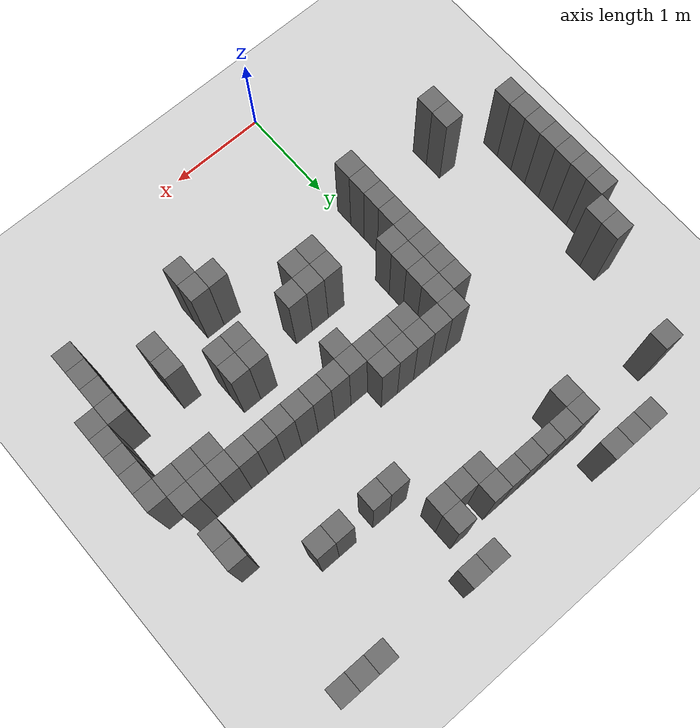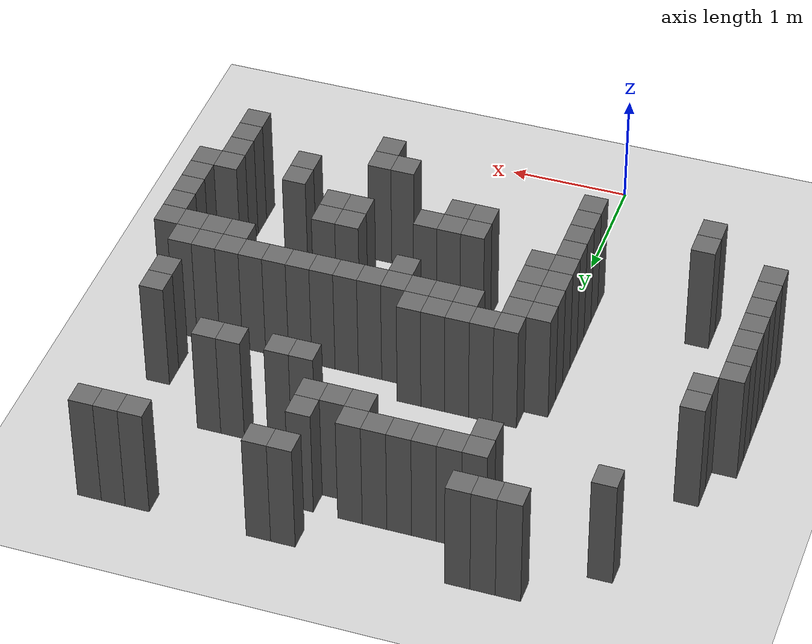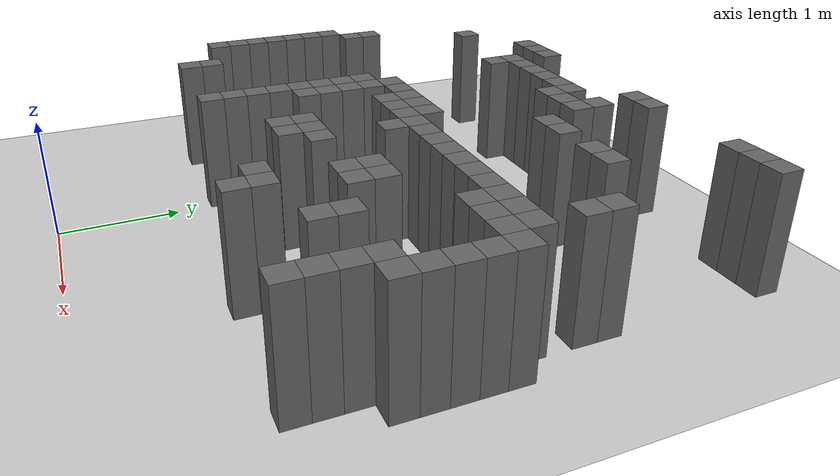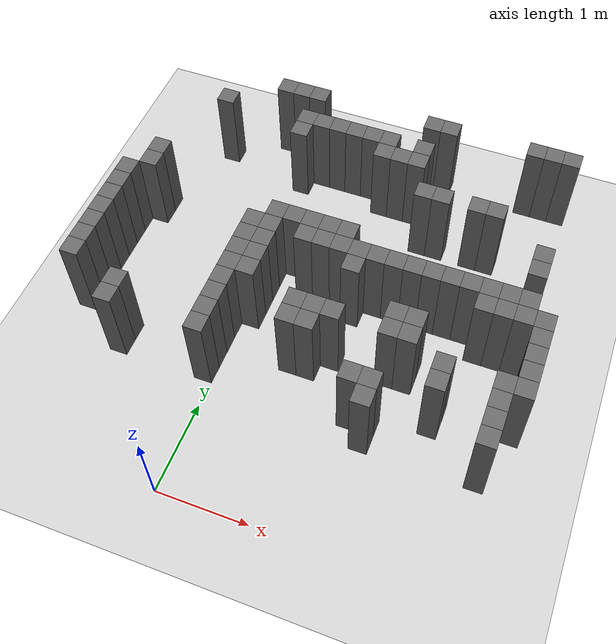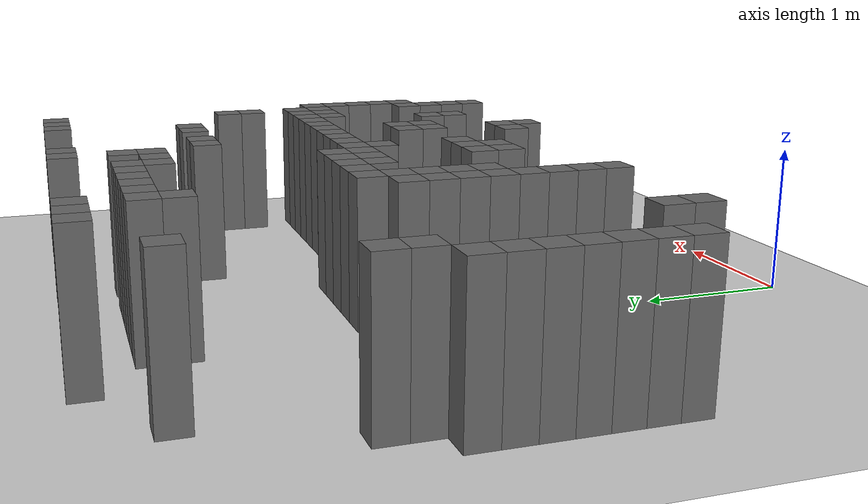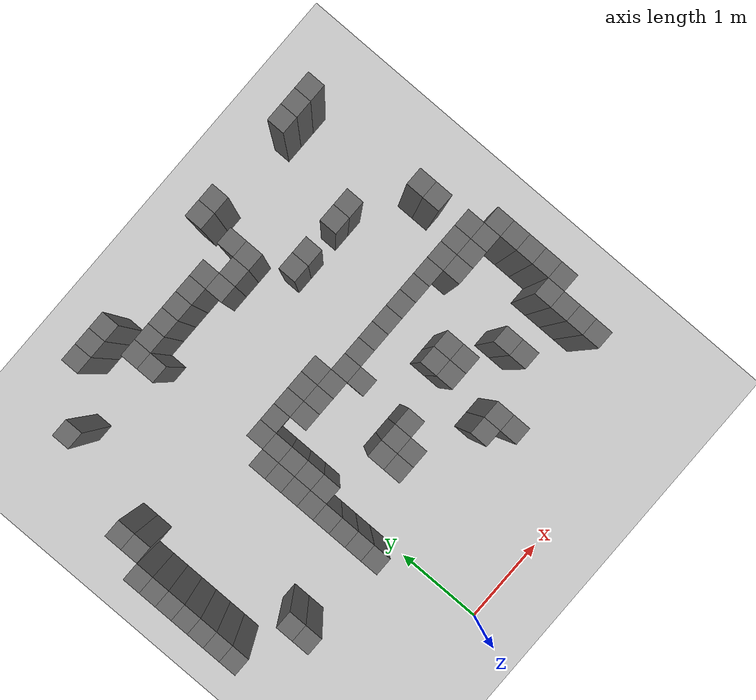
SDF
<sdf version="1.6">
 <world name="slam_world">
  <include><uri>model://sun</uri></include>
  <include><uri>model://ground_plane</uri></include>
  <model name="wall_0">
   <static>true</static>
   <pose>-0.490 4.790 0.500 0 0 0</pose>
   <link name="link">
    <collision name="collision"><geometry><box><size>0.200 0.200 1.000</size></box></geometry></collision>
    <visual name="visual">
     <geometry><box><size>0.200 0.200 1.000</size></box></geometry>
     <material><ambient>0.3 0.3 0.3 1</ambient><diffuse>0.4 0.4 0.4 1</diffuse></material>
    </visual>
   </link>
  </model>
  <model name="wall_1">
   <static>true</static>
   <pose>-0.290 4.790 0.500 0 0 0</pose>
   <link name="link">
    <collision name="collision"><geometry><box><size>0.200 0.200 1.000</size></box></geometry></collision>
    <visual name="visual">
     <geometry><box><size>0.200 0.200 1.000</size></box></geometry>
     <material><ambient>0.3 0.3 0.3 1</ambient><diffuse>0.4 0.4 0.4 1</diffuse></material>
    </visual>
   </link>
  </model>
  <model name="wall_2">
   <static>true</static>
   <pose>-0.090 4.790 0.500 0 0 0</pose>
   <link name="link">
    <collision name="collision"><geometry><box><size>0.200 0.200 1.000</size></box></geometry></collision>
    <visual name="visual">
     <geometry><box><size>0.200 0.200 1.000</size></box></geometry>
     <material><ambient>0.3 0.3 0.3 1</ambient><diffuse>0.4 0.4 0.4 1</diffuse></material>
    </visual>
   </link>
  </model>
  <model name="wall_3">
   <static>true</static>
   <pose>1.310 4.790 0.500 0 0 0</pose>
   <link name="link">
    <collision name="collision"><geometry><box><size>0.200 0.200 1.000</size></box></geometry></collision>
    <visual name="visual">
     <geometry><box><size>0.200 0.200 1.000</size></box></geometry>
     <material><ambient>0.3 0.3 0.3 1</ambient><diffuse>0.4 0.4 0.4 1</diffuse></material>
    </visual>
   </link>
  </model>
  <model name="wall_4">
   <static>true</static>
   <pose>1.510 4.790 0.500 0 0 0</pose>
   <link name="link">
    <collision name="collision"><geometry><box><size>0.200 0.200 1.000</size></box></geometry></collision>
    <visual name="visual">
     <geometry><box><size>0.200 0.200 1.000</size></box></geometry>
     <material><ambient>0.3 0.3 0.3 1</ambient><diffuse>0.4 0.4 0.4 1</diffuse></material>
    </visual>
   </link>
  </model>
  <model name="wall_5">
   <static>true</static>
   <pose>2.510 4.790 0.500 0 0 0</pose>
   <link name="link">
    <collision name="collision"><geometry><box><size>0.200 0.200 1.000</size></box></geometry></collision>
    <visual name="visual">
     <geometry><box><size>0.200 0.200 1.000</size></box></geometry>
     <material><ambient>0.3 0.3 0.3 1</ambient><diffuse>0.4 0.4 0.4 1</diffuse></material>
    </visual>
   </link>
  </model>
  <model name="wall_6">
   <static>true</static>
   <pose>2.710 4.790 0.500 0 0 0</pose>
   <link name="link">
    <collision name="collision"><geometry><box><size>0.200 0.200 1.000</size></box></geometry></collision>
    <visual name="visual">
     <geometry><box><size>0.200 0.200 1.000</size></box></geometry>
     <material><ambient>0.3 0.3 0.3 1</ambient><diffuse>0.4 0.4 0.4 1</diffuse></material>
    </visual>
   </link>
  </model>
  <model name="wall_7">
   <static>true</static>
   <pose>2.910 4.790 0.500 0 0 0</pose>
   <link name="link">
    <collision name="collision"><geometry><box><size>0.200 0.200 1.000</size></box></geometry></collision>
    <visual name="visual">
     <geometry><box><size>0.200 0.200 1.000</size></box></geometry>
     <material><ambient>0.3 0.3 0.3 1</ambient><diffuse>0.4 0.4 0.4 1</diffuse></material>
    </visual>
   </link>
  </model>
  <model name="wall_8">
   <static>true</static>
   <pose>-1.090 4.390 0.500 0 0 0</pose>
   <link name="link">
    <collision name="collision"><geometry><box><size>0.200 0.200 1.000</size></box></geometry></collision>
    <visual name="visual">
     <geometry><box><size>0.200 0.200 1.000</size></box></geometry>
     <material><ambient>0.3 0.3 0.3 1</ambient><diffuse>0.4 0.4 0.4 1</diffuse></material>
    </visual>
   </link>
  </model>
  <model name="wall_9">
   <static>true</static>
   <pose>-0.090 4.390 0.500 0 0 0</pose>
   <link name="link">
    <collision name="collision"><geometry><box><size>0.200 0.200 1.000</size></box></geometry></collision>
    <visual name="visual">
     <geometry><box><size>0.200 0.200 1.000</size></box></geometry>
     <material><ambient>0.3 0.3 0.3 1</ambient><diffuse>0.4 0.4 0.4 1</diffuse></material>
    </visual>
   </link>
  </model>
  <model name="wall_10">
   <static>true</static>
   <pose>0.110 4.390 0.500 0 0 0</pose>
   <link name="link">
    <collision name="collision"><geometry><box><size>0.200 0.200 1.000</size></box></geometry></collision>
    <visual name="visual">
     <geometry><box><size>0.200 0.200 1.000</size></box></geometry>
     <material><ambient>0.3 0.3 0.3 1</ambient><diffuse>0.4 0.4 0.4 1</diffuse></material>
    </visual>
   </link>
  </model>
  <model name="wall_11">
   <static>true</static>
   <pose>0.310 4.390 0.500 0 0 0</pose>
   <link name="link">
    <collision name="collision"><geometry><box><size>0.200 0.200 1.000</size></box></geometry></collision>
    <visual name="visual">
     <geometry><box><size>0.200 0.200 1.000</size></box></geometry>
     <material><ambient>0.3 0.3 0.3 1</ambient><diffuse>0.4 0.4 0.4 1</diffuse></material>
    </visual>
   </link>
  </model>
  <model name="wall_12">
   <static>true</static>
   <pose>0.510 4.390 0.500 0 0 0</pose>
   <link name="link">
    <collision name="collision"><geometry><box><size>0.200 0.200 1.000</size></box></geometry></collision>
    <visual name="visual">
     <geometry><box><size>0.200 0.200 1.000</size></box></geometry>
     <material><ambient>0.3 0.3 0.3 1</ambient><diffuse>0.4 0.4 0.4 1</diffuse></material>
    </visual>
   </link>
  </model>
  <model name="wall_13">
   <static>true</static>
   <pose>0.710 4.390 0.500 0 0 0</pose>
   <link name="link">
    <collision name="collision"><geometry><box><size>0.200 0.200 1.000</size></box></geometry></collision>
    <visual name="visual">
     <geometry><box><size>0.200 0.200 1.000</size></box></geometry>
     <material><ambient>0.3 0.3 0.3 1</ambient><diffuse>0.4 0.4 0.4 1</diffuse></material>
    </visual>
   </link>
  </model>
  <model name="wall_14">
   <static>true</static>
   <pose>0.910 4.390 0.500 0 0 0</pose>
   <link name="link">
    <collision name="collision"><geometry><box><size>0.200 0.200 1.000</size></box></geometry></collision>
    <visual name="visual">
     <geometry><box><size>0.200 0.200 1.000</size></box></geometry>
     <material><ambient>0.3 0.3 0.3 1</ambient><diffuse>0.4 0.4 0.4 1</diffuse></material>
    </visual>
   </link>
  </model>
  <model name="wall_15">
   <static>true</static>
   <pose>1.310 4.390 0.500 0 0 0</pose>
   <link name="link">
    <collision name="collision"><geometry><box><size>0.200 0.200 1.000</size></box></geometry></collision>
    <visual name="visual">
     <geometry><box><size>0.200 0.200 1.000</size></box></geometry>
     <material><ambient>0.3 0.3 0.3 1</ambient><diffuse>0.4 0.4 0.4 1</diffuse></material>
    </visual>
   </link>
  </model>
  <model name="wall_16">
   <static>true</static>
   <pose>-0.090 4.190 0.500 0 0 0</pose>
   <link name="link">
    <collision name="collision"><geometry><box><size>0.200 0.200 1.000</size></box></geometry></collision>
    <visual name="visual">
     <geometry><box><size>0.200 0.200 1.000</size></box></geometry>
     <material><ambient>0.3 0.3 0.3 1</ambient><diffuse>0.4 0.4 0.4 1</diffuse></material>
    </visual>
   </link>
  </model>
  <model name="wall_17">
   <static>true</static>
   <pose>0.910 4.190 0.500 0 0 0</pose>
   <link name="link">
    <collision name="collision"><geometry><box><size>0.200 0.200 1.000</size></box></geometry></collision>
    <visual name="visual">
     <geometry><box><size>0.200 0.200 1.000</size></box></geometry>
     <material><ambient>0.3 0.3 0.3 1</ambient><diffuse>0.4 0.4 0.4 1</diffuse></material>
    </visual>
   </link>
  </model>
  <model name="wall_18">
   <static>true</static>
   <pose>1.110 4.190 0.500 0 0 0</pose>
   <link name="link">
    <collision name="collision"><geometry><box><size>0.200 0.200 1.000</size></box></geometry></collision>
    <visual name="visual">
     <geometry><box><size>0.200 0.200 1.000</size></box></geometry>
     <material><ambient>0.3 0.3 0.3 1</ambient><diffuse>0.4 0.4 0.4 1</diffuse></material>
    </visual>
   </link>
  </model>
  <model name="wall_19">
   <static>true</static>
   <pose>1.310 4.190 0.500 0 0 0</pose>
   <link name="link">
    <collision name="collision"><geometry><box><size>0.200 0.200 1.000</size></box></geometry></collision>
    <visual name="visual">
     <geometry><box><size>0.200 0.200 1.000</size></box></geometry>
     <material><ambient>0.3 0.3 0.3 1</ambient><diffuse>0.4 0.4 0.4 1</diffuse></material>
    </visual>
   </link>
  </model>
  <model name="wall_20">
   <static>true</static>
   <pose>1.510 3.790 0.500 0 0 0</pose>
   <link name="link">
    <collision name="collision"><geometry><box><size>0.200 0.200 1.000</size></box></geometry></collision>
    <visual name="visual">
     <geometry><box><size>0.200 0.200 1.000</size></box></geometry>
     <material><ambient>0.3 0.3 0.3 1</ambient><diffuse>0.4 0.4 0.4 1</diffuse></material>
    </visual>
   </link>
  </model>
  <model name="wall_21">
   <static>true</static>
   <pose>1.710 3.790 0.500 0 0 0</pose>
   <link name="link">
    <collision name="collision"><geometry><box><size>0.200 0.200 1.000</size></box></geometry></collision>
    <visual name="visual">
     <geometry><box><size>0.200 0.200 1.000</size></box></geometry>
     <material><ambient>0.3 0.3 0.3 1</ambient><diffuse>0.4 0.4 0.4 1</diffuse></material>
    </visual>
   </link>
  </model>
  <model name="wall_22">
   <static>true</static>
   <pose>2.110 3.790 0.500 0 0 0</pose>
   <link name="link">
    <collision name="collision"><geometry><box><size>0.200 0.200 1.000</size></box></geometry></collision>
    <visual name="visual">
     <geometry><box><size>0.200 0.200 1.000</size></box></geometry>
     <material><ambient>0.3 0.3 0.3 1</ambient><diffuse>0.4 0.4 0.4 1</diffuse></material>
    </visual>
   </link>
  </model>
  <model name="wall_23">
   <static>true</static>
   <pose>2.310 3.790 0.500 0 0 0</pose>
   <link name="link">
    <collision name="collision"><geometry><box><size>0.200 0.200 1.000</size></box></geometry></collision>
    <visual name="visual">
     <geometry><box><size>0.200 0.200 1.000</size></box></geometry>
     <material><ambient>0.3 0.3 0.3 1</ambient><diffuse>0.4 0.4 0.4 1</diffuse></material>
    </visual>
   </link>
  </model>
  <model name="wall_24">
   <static>true</static>
   <pose>-1.490 3.390 0.500 0 0 0</pose>
   <link name="link">
    <collision name="collision"><geometry><box><size>0.200 0.200 1.000</size></box></geometry></collision>
    <visual name="visual">
     <geometry><box><size>0.200 0.200 1.000</size></box></geometry>
     <material><ambient>0.3 0.3 0.3 1</ambient><diffuse>0.4 0.4 0.4 1</diffuse></material>
    </visual>
   </link>
  </model>
  <model name="wall_25">
   <static>true</static>
   <pose>2.910 3.390 0.500 0 0 0</pose>
   <link name="link">
    <collision name="collision"><geometry><box><size>0.200 0.200 1.000</size></box></geometry></collision>
    <visual name="visual">
     <geometry><box><size>0.200 0.200 1.000</size></box></geometry>
     <material><ambient>0.3 0.3 0.3 1</ambient><diffuse>0.4 0.4 0.4 1</diffuse></material>
    </visual>
   </link>
  </model>
  <model name="wall_26">
   <static>true</static>
   <pose>-1.490 3.190 0.500 0 0 0</pose>
   <link name="link">
    <collision name="collision"><geometry><box><size>0.200 0.200 1.000</size></box></geometry></collision>
    <visual name="visual">
     <geometry><box><size>0.200 0.200 1.000</size></box></geometry>
     <material><ambient>0.3 0.3 0.3 1</ambient><diffuse>0.4 0.4 0.4 1</diffuse></material>
    </visual>
   </link>
  </model>
  <model name="wall_27">
   <static>true</static>
   <pose>2.910 3.190 0.500 0 0 0</pose>
   <link name="link">
    <collision name="collision"><geometry><box><size>0.200 0.200 1.000</size></box></geometry></collision>
    <visual name="visual">
     <geometry><box><size>0.200 0.200 1.000</size></box></geometry>
     <material><ambient>0.3 0.3 0.3 1</ambient><diffuse>0.4 0.4 0.4 1</diffuse></material>
    </visual>
   </link>
  </model>
  <model name="wall_28">
   <static>true</static>
   <pose>-1.690 2.990 0.500 0 0 0</pose>
   <link name="link">
    <collision name="collision"><geometry><box><size>0.200 0.200 1.000</size></box></geometry></collision>
    <visual name="visual">
     <geometry><box><size>0.200 0.200 1.000</size></box></geometry>
     <material><ambient>0.3 0.3 0.3 1</ambient><diffuse>0.4 0.4 0.4 1</diffuse></material>
    </visual>
   </link>
  </model>
  <model name="wall_29">
   <static>true</static>
   <pose>0.110 2.990 0.500 0 0 0</pose>
   <link name="link">
    <collision name="collision"><geometry><box><size>0.200 0.200 1.000</size></box></geometry></collision>
    <visual name="visual">
     <geometry><box><size>0.200 0.200 1.000</size></box></geometry>
     <material><ambient>0.3 0.3 0.3 1</ambient><diffuse>0.4 0.4 0.4 1</diffuse></material>
    </visual>
   </link>
  </model>
  <model name="wall_30">
   <static>true</static>
   <pose>0.310 2.990 0.500 0 0 0</pose>
   <link name="link">
    <collision name="collision"><geometry><box><size>0.200 0.200 1.000</size></box></geometry></collision>
    <visual name="visual">
     <geometry><box><size>0.200 0.200 1.000</size></box></geometry>
     <material><ambient>0.3 0.3 0.3 1</ambient><diffuse>0.4 0.4 0.4 1</diffuse></material>
    </visual>
   </link>
  </model>
  <model name="wall_31">
   <static>true</static>
   <pose>0.510 2.990 0.500 0 0 0</pose>
   <link name="link">
    <collision name="collision"><geometry><box><size>0.200 0.200 1.000</size></box></geometry></collision>
    <visual name="visual">
     <geometry><box><size>0.200 0.200 1.000</size></box></geometry>
     <material><ambient>0.3 0.3 0.3 1</ambient><diffuse>0.4 0.4 0.4 1</diffuse></material>
    </visual>
   </link>
  </model>
  <model name="wall_32">
   <static>true</static>
   <pose>0.710 2.990 0.500 0 0 0</pose>
   <link name="link">
    <collision name="collision"><geometry><box><size>0.200 0.200 1.000</size></box></geometry></collision>
    <visual name="visual">
     <geometry><box><size>0.200 0.200 1.000</size></box></geometry>
     <material><ambient>0.3 0.3 0.3 1</ambient><diffuse>0.4 0.4 0.4 1</diffuse></material>
    </visual>
   </link>
  </model>
  <model name="wall_33">
   <static>true</static>
   <pose>0.910 2.990 0.500 0 0 0</pose>
   <link name="link">
    <collision name="collision"><geometry><box><size>0.200 0.200 1.000</size></box></geometry></collision>
    <visual name="visual">
     <geometry><box><size>0.200 0.200 1.000</size></box></geometry>
     <material><ambient>0.3 0.3 0.3 1</ambient><diffuse>0.4 0.4 0.4 1</diffuse></material>
    </visual>
   </link>
  </model>
  <model name="wall_34">
   <static>true</static>
   <pose>-1.690 2.790 0.500 0 0 0</pose>
   <link name="link">
    <collision name="collision"><geometry><box><size>0.200 0.200 1.000</size></box></geometry></collision>
    <visual name="visual">
     <geometry><box><size>0.200 0.200 1.000</size></box></geometry>
     <material><ambient>0.3 0.3 0.3 1</ambient><diffuse>0.4 0.4 0.4 1</diffuse></material>
    </visual>
   </link>
  </model>
  <model name="wall_35">
   <static>true</static>
   <pose>-0.090 2.790 0.500 0 0 0</pose>
   <link name="link">
    <collision name="collision"><geometry><box><size>0.200 0.200 1.000</size></box></geometry></collision>
    <visual name="visual">
     <geometry><box><size>0.200 0.200 1.000</size></box></geometry>
     <material><ambient>0.3 0.3 0.3 1</ambient><diffuse>0.4 0.4 0.4 1</diffuse></material>
    </visual>
   </link>
  </model>
  <model name="wall_36">
   <static>true</static>
   <pose>0.110 2.790 0.500 0 0 0</pose>
   <link name="link">
    <collision name="collision"><geometry><box><size>0.200 0.200 1.000</size></box></geometry></collision>
    <visual name="visual">
     <geometry><box><size>0.200 0.200 1.000</size></box></geometry>
     <material><ambient>0.3 0.3 0.3 1</ambient><diffuse>0.4 0.4 0.4 1</diffuse></material>
    </visual>
   </link>
  </model>
  <model name="wall_37">
   <static>true</static>
   <pose>0.510 2.790 0.500 0 0 0</pose>
   <link name="link">
    <collision name="collision"><geometry><box><size>0.200 0.200 1.000</size></box></geometry></collision>
    <visual name="visual">
     <geometry><box><size>0.200 0.200 1.000</size></box></geometry>
     <material><ambient>0.3 0.3 0.3 1</ambient><diffuse>0.4 0.4 0.4 1</diffuse></material>
    </visual>
   </link>
  </model>
  <model name="wall_38">
   <static>true</static>
   <pose>0.710 2.790 0.500 0 0 0</pose>
   <link name="link">
    <collision name="collision"><geometry><box><size>0.200 0.200 1.000</size></box></geometry></collision>
    <visual name="visual">
     <geometry><box><size>0.200 0.200 1.000</size></box></geometry>
     <material><ambient>0.3 0.3 0.3 1</ambient><diffuse>0.4 0.4 0.4 1</diffuse></material>
    </visual>
   </link>
  </model>
  <model name="wall_39">
   <static>true</static>
   <pose>0.910 2.790 0.500 0 0 0</pose>
   <link name="link">
    <collision name="collision"><geometry><box><size>0.200 0.200 1.000</size></box></geometry></collision>
    <visual name="visual">
     <geometry><box><size>0.200 0.200 1.000</size></box></geometry>
     <material><ambient>0.3 0.3 0.3 1</ambient><diffuse>0.4 0.4 0.4 1</diffuse></material>
    </visual>
   </link>
  </model>
  <model name="wall_40">
   <static>true</static>
   <pose>1.110 2.790 0.500 0 0 0</pose>
   <link name="link">
    <collision name="collision"><geometry><box><size>0.200 0.200 1.000</size></box></geometry></collision>
    <visual name="visual">
     <geometry><box><size>0.200 0.200 1.000</size></box></geometry>
     <material><ambient>0.3 0.3 0.3 1</ambient><diffuse>0.4 0.4 0.4 1</diffuse></material>
    </visual>
   </link>
  </model>
  <model name="wall_41">
   <static>true</static>
   <pose>1.310 2.790 0.500 0 0 0</pose>
   <link name="link">
    <collision name="collision"><geometry><box><size>0.200 0.200 1.000</size></box></geometry></collision>
    <visual name="visual">
     <geometry><box><size>0.200 0.200 1.000</size></box></geometry>
     <material><ambient>0.3 0.3 0.3 1</ambient><diffuse>0.4 0.4 0.4 1</diffuse></material>
    </visual>
   </link>
  </model>
  <model name="wall_42">
   <static>true</static>
   <pose>1.510 2.790 0.500 0 0 0</pose>
   <link name="link">
    <collision name="collision"><geometry><box><size>0.200 0.200 1.000</size></box></geometry></collision>
    <visual name="visual">
     <geometry><box><size>0.200 0.200 1.000</size></box></geometry>
     <material><ambient>0.3 0.3 0.3 1</ambient><diffuse>0.4 0.4 0.4 1</diffuse></material>
    </visual>
   </link>
  </model>
  <model name="wall_43">
   <static>true</static>
   <pose>1.710 2.790 0.500 0 0 0</pose>
   <link name="link">
    <collision name="collision"><geometry><box><size>0.200 0.200 1.000</size></box></geometry></collision>
    <visual name="visual">
     <geometry><box><size>0.200 0.200 1.000</size></box></geometry>
     <material><ambient>0.3 0.3 0.3 1</ambient><diffuse>0.4 0.4 0.4 1</diffuse></material>
    </visual>
   </link>
  </model>
  <model name="wall_44">
   <static>true</static>
   <pose>1.910 2.790 0.500 0 0 0</pose>
   <link name="link">
    <collision name="collision"><geometry><box><size>0.200 0.200 1.000</size></box></geometry></collision>
    <visual name="visual">
     <geometry><box><size>0.200 0.200 1.000</size></box></geometry>
     <material><ambient>0.3 0.3 0.3 1</ambient><diffuse>0.4 0.4 0.4 1</diffuse></material>
    </visual>
   </link>
  </model>
  <model name="wall_45">
   <static>true</static>
   <pose>2.110 2.790 0.500 0 0 0</pose>
   <link name="link">
    <collision name="collision"><geometry><box><size>0.200 0.200 1.000</size></box></geometry></collision>
    <visual name="visual">
     <geometry><box><size>0.200 0.200 1.000</size></box></geometry>
     <material><ambient>0.3 0.3 0.3 1</ambient><diffuse>0.4 0.4 0.4 1</diffuse></material>
    </visual>
   </link>
  </model>
  <model name="wall_46">
   <static>true</static>
   <pose>2.310 2.790 0.500 0 0 0</pose>
   <link name="link">
    <collision name="collision"><geometry><box><size>0.200 0.200 1.000</size></box></geometry></collision>
    <visual name="visual">
     <geometry><box><size>0.200 0.200 1.000</size></box></geometry>
     <material><ambient>0.3 0.3 0.3 1</ambient><diffuse>0.4 0.4 0.4 1</diffuse></material>
    </visual>
   </link>
  </model>
  <model name="wall_47">
   <static>true</static>
   <pose>2.510 2.790 0.500 0 0 0</pose>
   <link name="link">
    <collision name="collision"><geometry><box><size>0.200 0.200 1.000</size></box></geometry></collision>
    <visual name="visual">
     <geometry><box><size>0.200 0.200 1.000</size></box></geometry>
     <material><ambient>0.3 0.3 0.3 1</ambient><diffuse>0.4 0.4 0.4 1</diffuse></material>
    </visual>
   </link>
  </model>
  <model name="wall_48">
   <static>true</static>
   <pose>2.710 2.790 0.500 0 0 0</pose>
   <link name="link">
    <collision name="collision"><geometry><box><size>0.200 0.200 1.000</size></box></geometry></collision>
    <visual name="visual">
     <geometry><box><size>0.200 0.200 1.000</size></box></geometry>
     <material><ambient>0.3 0.3 0.3 1</ambient><diffuse>0.4 0.4 0.4 1</diffuse></material>
    </visual>
   </link>
  </model>
  <model name="wall_49">
   <static>true</static>
   <pose>2.910 2.790 0.500 0 0 0</pose>
   <link name="link">
    <collision name="collision"><geometry><box><size>0.200 0.200 1.000</size></box></geometry></collision>
    <visual name="visual">
     <geometry><box><size>0.200 0.200 1.000</size></box></geometry>
     <material><ambient>0.3 0.3 0.3 1</ambient><diffuse>0.4 0.4 0.4 1</diffuse></material>
    </visual>
   </link>
  </model>
  <model name="wall_50">
   <static>true</static>
   <pose>-1.690 2.590 0.500 0 0 0</pose>
   <link name="link">
    <collision name="collision"><geometry><box><size>0.200 0.200 1.000</size></box></geometry></collision>
    <visual name="visual">
     <geometry><box><size>0.200 0.200 1.000</size></box></geometry>
     <material><ambient>0.3 0.3 0.3 1</ambient><diffuse>0.4 0.4 0.4 1</diffuse></material>
    </visual>
   </link>
  </model>
  <model name="wall_51">
   <static>true</static>
   <pose>-0.090 2.590 0.500 0 0 0</pose>
   <link name="link">
    <collision name="collision"><geometry><box><size>0.200 0.200 1.000</size></box></geometry></collision>
    <visual name="visual">
     <geometry><box><size>0.200 0.200 1.000</size></box></geometry>
     <material><ambient>0.3 0.3 0.3 1</ambient><diffuse>0.4 0.4 0.4 1</diffuse></material>
    </visual>
   </link>
  </model>
  <model name="wall_52">
   <static>true</static>
   <pose>0.110 2.590 0.500 0 0 0</pose>
   <link name="link">
    <collision name="collision"><geometry><box><size>0.200 0.200 1.000</size></box></geometry></collision>
    <visual name="visual">
     <geometry><box><size>0.200 0.200 1.000</size></box></geometry>
     <material><ambient>0.3 0.3 0.3 1</ambient><diffuse>0.4 0.4 0.4 1</diffuse></material>
    </visual>
   </link>
  </model>
  <model name="wall_53">
   <static>true</static>
   <pose>1.110 2.590 0.500 0 0 0</pose>
   <link name="link">
    <collision name="collision"><geometry><box><size>0.200 0.200 1.000</size></box></geometry></collision>
    <visual name="visual">
     <geometry><box><size>0.200 0.200 1.000</size></box></geometry>
     <material><ambient>0.3 0.3 0.3 1</ambient><diffuse>0.4 0.4 0.4 1</diffuse></material>
    </visual>
   </link>
  </model>
  <model name="wall_54">
   <static>true</static>
   <pose>2.510 2.590 0.500 0 0 0</pose>
   <link name="link">
    <collision name="collision"><geometry><box><size>0.200 0.200 1.000</size></box></geometry></collision>
    <visual name="visual">
     <geometry><box><size>0.200 0.200 1.000</size></box></geometry>
     <material><ambient>0.3 0.3 0.3 1</ambient><diffuse>0.4 0.4 0.4 1</diffuse></material>
    </visual>
   </link>
  </model>
  <model name="wall_55">
   <static>true</static>
   <pose>2.710 2.590 0.500 0 0 0</pose>
   <link name="link">
    <collision name="collision"><geometry><box><size>0.200 0.200 1.000</size></box></geometry></collision>
    <visual name="visual">
     <geometry><box><size>0.200 0.200 1.000</size></box></geometry>
     <material><ambient>0.3 0.3 0.3 1</ambient><diffuse>0.4 0.4 0.4 1</diffuse></material>
    </visual>
   </link>
  </model>
  <model name="wall_56">
   <static>true</static>
   <pose>2.910 2.590 0.500 0 0 0</pose>
   <link name="link">
    <collision name="collision"><geometry><box><size>0.200 0.200 1.000</size></box></geometry></collision>
    <visual name="visual">
     <geometry><box><size>0.200 0.200 1.000</size></box></geometry>
     <material><ambient>0.3 0.3 0.3 1</ambient><diffuse>0.4 0.4 0.4 1</diffuse></material>
    </visual>
   </link>
  </model>
  <model name="wall_57">
   <static>true</static>
   <pose>3.110 2.590 0.500 0 0 0</pose>
   <link name="link">
    <collision name="collision"><geometry><box><size>0.200 0.200 1.000</size></box></geometry></collision>
    <visual name="visual">
     <geometry><box><size>0.200 0.200 1.000</size></box></geometry>
     <material><ambient>0.3 0.3 0.3 1</ambient><diffuse>0.4 0.4 0.4 1</diffuse></material>
    </visual>
   </link>
  </model>
  <model name="wall_58">
   <static>true</static>
   <pose>-1.690 2.390 0.500 0 0 0</pose>
   <link name="link">
    <collision name="collision"><geometry><box><size>0.200 0.200 1.000</size></box></geometry></collision>
    <visual name="visual">
     <geometry><box><size>0.200 0.200 1.000</size></box></geometry>
     <material><ambient>0.3 0.3 0.3 1</ambient><diffuse>0.4 0.4 0.4 1</diffuse></material>
    </visual>
   </link>
  </model>
  <model name="wall_59">
   <static>true</static>
   <pose>-0.090 2.390 0.500 0 0 0</pose>
   <link name="link">
    <collision name="collision"><geometry><box><size>0.200 0.200 1.000</size></box></geometry></collision>
    <visual name="visual">
     <geometry><box><size>0.200 0.200 1.000</size></box></geometry>
     <material><ambient>0.3 0.3 0.3 1</ambient><diffuse>0.4 0.4 0.4 1</diffuse></material>
    </visual>
   </link>
  </model>
  <model name="wall_60">
   <static>true</static>
   <pose>0.110 2.390 0.500 0 0 0</pose>
   <link name="link">
    <collision name="collision"><geometry><box><size>0.200 0.200 1.000</size></box></geometry></collision>
    <visual name="visual">
     <geometry><box><size>0.200 0.200 1.000</size></box></geometry>
     <material><ambient>0.3 0.3 0.3 1</ambient><diffuse>0.4 0.4 0.4 1</diffuse></material>
    </visual>
   </link>
  </model>
  <model name="wall_61">
   <static>true</static>
   <pose>3.110 2.390 0.500 0 0 0</pose>
   <link name="link">
    <collision name="collision"><geometry><box><size>0.200 0.200 1.000</size></box></geometry></collision>
    <visual name="visual">
     <geometry><box><size>0.200 0.200 1.000</size></box></geometry>
     <material><ambient>0.3 0.3 0.3 1</ambient><diffuse>0.4 0.4 0.4 1</diffuse></material>
    </visual>
   </link>
  </model>
  <model name="wall_62">
   <static>true</static>
   <pose>-1.690 2.190 0.500 0 0 0</pose>
   <link name="link">
    <collision name="collision"><geometry><box><size>0.200 0.200 1.000</size></box></geometry></collision>
    <visual name="visual">
     <geometry><box><size>0.200 0.200 1.000</size></box></geometry>
     <material><ambient>0.3 0.3 0.3 1</ambient><diffuse>0.4 0.4 0.4 1</diffuse></material>
    </visual>
   </link>
  </model>
  <model name="wall_63">
   <static>true</static>
   <pose>-0.090 2.190 0.500 0 0 0</pose>
   <link name="link">
    <collision name="collision"><geometry><box><size>0.200 0.200 1.000</size></box></geometry></collision>
    <visual name="visual">
     <geometry><box><size>0.200 0.200 1.000</size></box></geometry>
     <material><ambient>0.3 0.3 0.3 1</ambient><diffuse>0.4 0.4 0.4 1</diffuse></material>
    </visual>
   </link>
  </model>
  <model name="wall_64">
   <static>true</static>
   <pose>0.110 2.190 0.500 0 0 0</pose>
   <link name="link">
    <collision name="collision"><geometry><box><size>0.200 0.200 1.000</size></box></geometry></collision>
    <visual name="visual">
     <geometry><box><size>0.200 0.200 1.000</size></box></geometry>
     <material><ambient>0.3 0.3 0.3 1</ambient><diffuse>0.4 0.4 0.4 1</diffuse></material>
    </visual>
   </link>
  </model>
  <model name="wall_65">
   <static>true</static>
   <pose>1.710 2.190 0.500 0 0 0</pose>
   <link name="link">
    <collision name="collision"><geometry><box><size>0.200 0.200 1.000</size></box></geometry></collision>
    <visual name="visual">
     <geometry><box><size>0.200 0.200 1.000</size></box></geometry>
     <material><ambient>0.3 0.3 0.3 1</ambient><diffuse>0.4 0.4 0.4 1</diffuse></material>
    </visual>
   </link>
  </model>
  <model name="wall_66">
   <static>true</static>
   <pose>1.910 2.190 0.500 0 0 0</pose>
   <link name="link">
    <collision name="collision"><geometry><box><size>0.200 0.200 1.000</size></box></geometry></collision>
    <visual name="visual">
     <geometry><box><size>0.200 0.200 1.000</size></box></geometry>
     <material><ambient>0.3 0.3 0.3 1</ambient><diffuse>0.4 0.4 0.4 1</diffuse></material>
    </visual>
   </link>
  </model>
  <model name="wall_67">
   <static>true</static>
   <pose>3.110 2.190 0.500 0 0 0</pose>
   <link name="link">
    <collision name="collision"><geometry><box><size>0.200 0.200 1.000</size></box></geometry></collision>
    <visual name="visual">
     <geometry><box><size>0.200 0.200 1.000</size></box></geometry>
     <material><ambient>0.3 0.3 0.3 1</ambient><diffuse>0.4 0.4 0.4 1</diffuse></material>
    </visual>
   </link>
  </model>
  <model name="wall_68">
   <static>true</static>
   <pose>-1.690 1.990 0.500 0 0 0</pose>
   <link name="link">
    <collision name="collision"><geometry><box><size>0.200 0.200 1.000</size></box></geometry></collision>
    <visual name="visual">
     <geometry><box><size>0.200 0.200 1.000</size></box></geometry>
     <material><ambient>0.3 0.3 0.3 1</ambient><diffuse>0.4 0.4 0.4 1</diffuse></material>
    </visual>
   </link>
  </model>
  <model name="wall_69">
   <static>true</static>
   <pose>-0.090 1.990 0.500 0 0 0</pose>
   <link name="link">
    <collision name="collision"><geometry><box><size>0.200 0.200 1.000</size></box></geometry></collision>
    <visual name="visual">
     <geometry><box><size>0.200 0.200 1.000</size></box></geometry>
     <material><ambient>0.3 0.3 0.3 1</ambient><diffuse>0.4 0.4 0.4 1</diffuse></material>
    </visual>
   </link>
  </model>
  <model name="wall_70">
   <static>true</static>
   <pose>0.710 1.990 0.500 0 0 0</pose>
   <link name="link">
    <collision name="collision"><geometry><box><size>0.200 0.200 1.000</size></box></geometry></collision>
    <visual name="visual">
     <geometry><box><size>0.200 0.200 1.000</size></box></geometry>
     <material><ambient>0.3 0.3 0.3 1</ambient><diffuse>0.4 0.4 0.4 1</diffuse></material>
    </visual>
   </link>
  </model>
  <model name="wall_71">
   <static>true</static>
   <pose>0.910 1.990 0.500 0 0 0</pose>
   <link name="link">
    <collision name="collision"><geometry><box><size>0.200 0.200 1.000</size></box></geometry></collision>
    <visual name="visual">
     <geometry><box><size>0.200 0.200 1.000</size></box></geometry>
     <material><ambient>0.3 0.3 0.3 1</ambient><diffuse>0.4 0.4 0.4 1</diffuse></material>
    </visual>
   </link>
  </model>
  <model name="wall_72">
   <static>true</static>
   <pose>1.110 1.990 0.500 0 0 0</pose>
   <link name="link">
    <collision name="collision"><geometry><box><size>0.200 0.200 1.000</size></box></geometry></collision>
    <visual name="visual">
     <geometry><box><size>0.200 0.200 1.000</size></box></geometry>
     <material><ambient>0.3 0.3 0.3 1</ambient><diffuse>0.4 0.4 0.4 1</diffuse></material>
    </visual>
   </link>
  </model>
  <model name="wall_73">
   <static>true</static>
   <pose>1.710 1.990 0.500 0 0 0</pose>
   <link name="link">
    <collision name="collision"><geometry><box><size>0.200 0.200 1.000</size></box></geometry></collision>
    <visual name="visual">
     <geometry><box><size>0.200 0.200 1.000</size></box></geometry>
     <material><ambient>0.3 0.3 0.3 1</ambient><diffuse>0.4 0.4 0.4 1</diffuse></material>
    </visual>
   </link>
  </model>
  <model name="wall_74">
   <static>true</static>
   <pose>1.910 1.990 0.500 0 0 0</pose>
   <link name="link">
    <collision name="collision"><geometry><box><size>0.200 0.200 1.000</size></box></geometry></collision>
    <visual name="visual">
     <geometry><box><size>0.200 0.200 1.000</size></box></geometry>
     <material><ambient>0.3 0.3 0.3 1</ambient><diffuse>0.4 0.4 0.4 1</diffuse></material>
    </visual>
   </link>
  </model>
  <model name="wall_75">
   <static>true</static>
   <pose>3.110 1.990 0.500 0 0 0</pose>
   <link name="link">
    <collision name="collision"><geometry><box><size>0.200 0.200 1.000</size></box></geometry></collision>
    <visual name="visual">
     <geometry><box><size>0.200 0.200 1.000</size></box></geometry>
     <material><ambient>0.3 0.3 0.3 1</ambient><diffuse>0.4 0.4 0.4 1</diffuse></material>
    </visual>
   </link>
  </model>
  <model name="wall_76">
   <static>true</static>
   <pose>-1.690 1.790 0.500 0 0 0</pose>
   <link name="link">
    <collision name="collision"><geometry><box><size>0.200 0.200 1.000</size></box></geometry></collision>
    <visual name="visual">
     <geometry><box><size>0.200 0.200 1.000</size></box></geometry>
     <material><ambient>0.3 0.3 0.3 1</ambient><diffuse>0.4 0.4 0.4 1</diffuse></material>
    </visual>
   </link>
  </model>
  <model name="wall_77">
   <static>true</static>
   <pose>-0.090 1.790 0.500 0 0 0</pose>
   <link name="link">
    <collision name="collision"><geometry><box><size>0.200 0.200 1.000</size></box></geometry></collision>
    <visual name="visual">
     <geometry><box><size>0.200 0.200 1.000</size></box></geometry>
     <material><ambient>0.3 0.3 0.3 1</ambient><diffuse>0.4 0.4 0.4 1</diffuse></material>
    </visual>
   </link>
  </model>
  <model name="wall_78">
   <static>true</static>
   <pose>0.710 1.790 0.500 0 0 0</pose>
   <link name="link">
    <collision name="collision"><geometry><box><size>0.200 0.200 1.000</size></box></geometry></collision>
    <visual name="visual">
     <geometry><box><size>0.200 0.200 1.000</size></box></geometry>
     <material><ambient>0.3 0.3 0.3 1</ambient><diffuse>0.4 0.4 0.4 1</diffuse></material>
    </visual>
   </link>
  </model>
  <model name="wall_79">
   <static>true</static>
   <pose>0.910 1.790 0.500 0 0 0</pose>
   <link name="link">
    <collision name="collision"><geometry><box><size>0.200 0.200 1.000</size></box></geometry></collision>
    <visual name="visual">
     <geometry><box><size>0.200 0.200 1.000</size></box></geometry>
     <material><ambient>0.3 0.3 0.3 1</ambient><diffuse>0.4 0.4 0.4 1</diffuse></material>
    </visual>
   </link>
  </model>
  <model name="wall_80">
   <static>true</static>
   <pose>2.310 1.790 0.500 0 0 0</pose>
   <link name="link">
    <collision name="collision"><geometry><box><size>0.200 0.200 1.000</size></box></geometry></collision>
    <visual name="visual">
     <geometry><box><size>0.200 0.200 1.000</size></box></geometry>
     <material><ambient>0.3 0.3 0.3 1</ambient><diffuse>0.4 0.4 0.4 1</diffuse></material>
    </visual>
   </link>
  </model>
  <model name="wall_81">
   <static>true</static>
   <pose>2.910 1.790 0.500 0 0 0</pose>
   <link name="link">
    <collision name="collision"><geometry><box><size>0.200 0.200 1.000</size></box></geometry></collision>
    <visual name="visual">
     <geometry><box><size>0.200 0.200 1.000</size></box></geometry>
     <material><ambient>0.3 0.3 0.3 1</ambient><diffuse>0.4 0.4 0.4 1</diffuse></material>
    </visual>
   </link>
  </model>
  <model name="wall_82">
   <static>true</static>
   <pose>3.110 1.790 0.500 0 0 0</pose>
   <link name="link">
    <collision name="collision"><geometry><box><size>0.200 0.200 1.000</size></box></geometry></collision>
    <visual name="visual">
     <geometry><box><size>0.200 0.200 1.000</size></box></geometry>
     <material><ambient>0.3 0.3 0.3 1</ambient><diffuse>0.4 0.4 0.4 1</diffuse></material>
    </visual>
   </link>
  </model>
  <model name="wall_83">
   <static>true</static>
   <pose>-1.090 1.590 0.500 0 0 0</pose>
   <link name="link">
    <collision name="collision"><geometry><box><size>0.200 0.200 1.000</size></box></geometry></collision>
    <visual name="visual">
     <geometry><box><size>0.200 0.200 1.000</size></box></geometry>
     <material><ambient>0.3 0.3 0.3 1</ambient><diffuse>0.4 0.4 0.4 1</diffuse></material>
    </visual>
   </link>
  </model>
  <model name="wall_84">
   <static>true</static>
   <pose>-0.090 1.590 0.500 0 0 0</pose>
   <link name="link">
    <collision name="collision"><geometry><box><size>0.200 0.200 1.000</size></box></geometry></collision>
    <visual name="visual">
     <geometry><box><size>0.200 0.200 1.000</size></box></geometry>
     <material><ambient>0.3 0.3 0.3 1</ambient><diffuse>0.4 0.4 0.4 1</diffuse></material>
    </visual>
   </link>
  </model>
  <model name="wall_85">
   <static>true</static>
   <pose>2.310 1.590 0.500 0 0 0</pose>
   <link name="link">
    <collision name="collision"><geometry><box><size>0.200 0.200 1.000</size></box></geometry></collision>
    <visual name="visual">
     <geometry><box><size>0.200 0.200 1.000</size></box></geometry>
     <material><ambient>0.3 0.3 0.3 1</ambient><diffuse>0.4 0.4 0.4 1</diffuse></material>
    </visual>
   </link>
  </model>
  <model name="wall_86">
   <static>true</static>
   <pose>2.910 1.590 0.500 0 0 0</pose>
   <link name="link">
    <collision name="collision"><geometry><box><size>0.200 0.200 1.000</size></box></geometry></collision>
    <visual name="visual">
     <geometry><box><size>0.200 0.200 1.000</size></box></geometry>
     <material><ambient>0.3 0.3 0.3 1</ambient><diffuse>0.4 0.4 0.4 1</diffuse></material>
    </visual>
   </link>
  </model>
  <model name="wall_87">
   <static>true</static>
   <pose>-1.090 1.390 0.500 0 0 0</pose>
   <link name="link">
    <collision name="collision"><geometry><box><size>0.200 0.200 1.000</size></box></geometry></collision>
    <visual name="visual">
     <geometry><box><size>0.200 0.200 1.000</size></box></geometry>
     <material><ambient>0.3 0.3 0.3 1</ambient><diffuse>0.4 0.4 0.4 1</diffuse></material>
    </visual>
   </link>
  </model>
  <model name="wall_88">
   <static>true</static>
   <pose>-0.090 1.390 0.500 0 0 0</pose>
   <link name="link">
    <collision name="collision"><geometry><box><size>0.200 0.200 1.000</size></box></geometry></collision>
    <visual name="visual">
     <geometry><box><size>0.200 0.200 1.000</size></box></geometry>
     <material><ambient>0.3 0.3 0.3 1</ambient><diffuse>0.4 0.4 0.4 1</diffuse></material>
    </visual>
   </link>
  </model>
  <model name="wall_89">
   <static>true</static>
   <pose>1.510 1.390 0.500 0 0 0</pose>
   <link name="link">
    <collision name="collision"><geometry><box><size>0.200 0.200 1.000</size></box></geometry></collision>
    <visual name="visual">
     <geometry><box><size>0.200 0.200 1.000</size></box></geometry>
     <material><ambient>0.3 0.3 0.3 1</ambient><diffuse>0.4 0.4 0.4 1</diffuse></material>
    </visual>
   </link>
  </model>
  <model name="wall_90">
   <static>true</static>
   <pose>1.710 1.390 0.500 0 0 0</pose>
   <link name="link">
    <collision name="collision"><geometry><box><size>0.200 0.200 1.000</size></box></geometry></collision>
    <visual name="visual">
     <geometry><box><size>0.200 0.200 1.000</size></box></geometry>
     <material><ambient>0.3 0.3 0.3 1</ambient><diffuse>0.4 0.4 0.4 1</diffuse></material>
    </visual>
   </link>
  </model>
  <model name="wall_91">
   <static>true</static>
   <pose>2.910 1.390 0.500 0 0 0</pose>
   <link name="link">
    <collision name="collision"><geometry><box><size>0.200 0.200 1.000</size></box></geometry></collision>
    <visual name="visual">
     <geometry><box><size>0.200 0.200 1.000</size></box></geometry>
     <material><ambient>0.3 0.3 0.3 1</ambient><diffuse>0.4 0.4 0.4 1</diffuse></material>
    </visual>
   </link>
  </model>
  <model name="wall_96">
   <static>true</static>
   <pose>1.710 1.190 0.500 0 0 0</pose>
   <link name="link">
    <collision name="collision"><geometry><box><size>0.200 0.200 1.000</size></box></geometry></collision>
    <visual name="visual">
     <geometry><box><size>0.200 0.200 1.000</size></box></geometry>
     <material><ambient>0.3 0.3 0.3 1</ambient><diffuse>0.4 0.4 0.4 1</diffuse></material>
    </visual>
   </link>
  </model>
  <model name="wall_97">
   <static>true</static>
   <pose>2.910 1.190 0.500 0 0 0</pose>
   <link name="link">
    <collision name="collision"><geometry><box><size>0.200 0.200 1.000</size></box></geometry></collision>
    <visual name="visual">
     <geometry><box><size>0.200 0.200 1.000</size></box></geometry>
     <material><ambient>0.3 0.3 0.3 1</ambient><diffuse>0.4 0.4 0.4 1</diffuse></material>
    </visual>
   </link>
  </model>
 </world>
</sdf>
